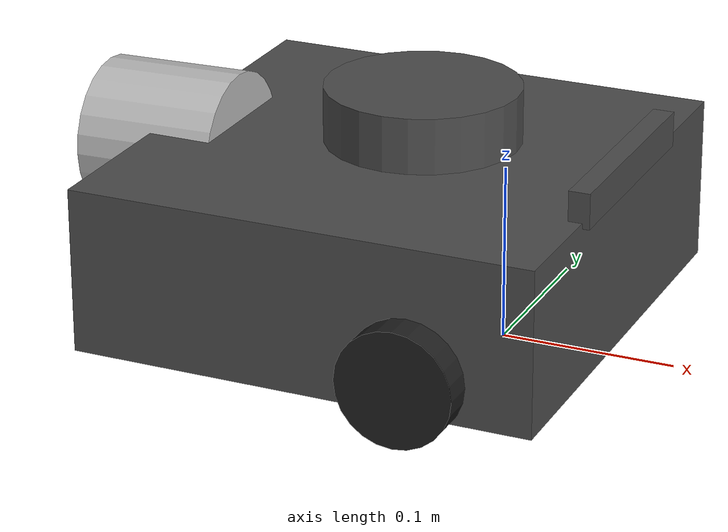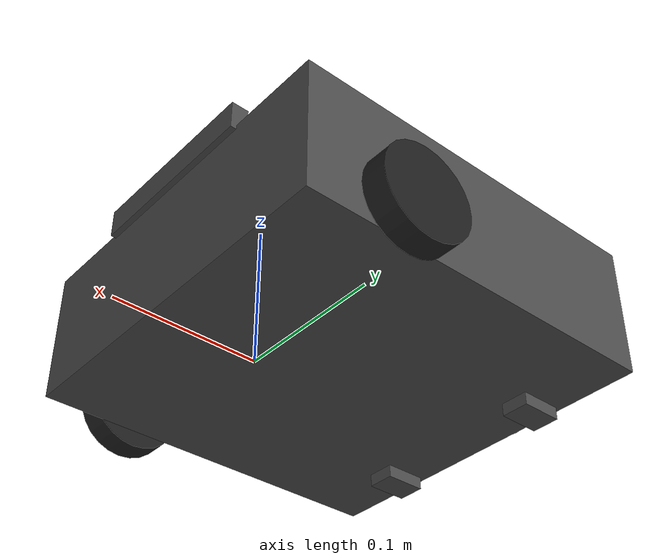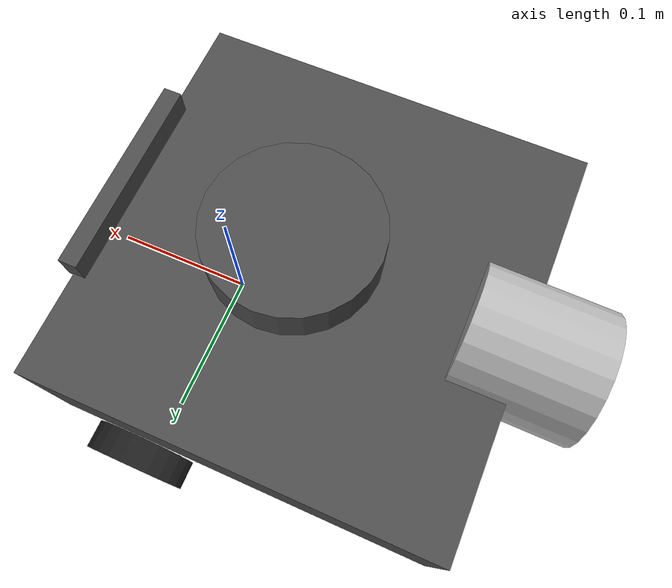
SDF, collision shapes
<?xml version='1.0'?>
<sdf version='1.6'>
  <model name='leader'>
    <link name='base_footprint'>
      <pose frame=''>0 0 -0 0 -0 0</pose>
      <inertial>
        <pose frame=''>-0.006056 0 0.019264 0 -0 0</pose>
        <mass>1.49691</mass>
        <inertia>
          <ixx>0.0133097</ixx>
          <ixy>-4.75766e-05</ixy>
          <ixz>0.000910646</ixz>
          <iyy>0.0139133</iyy>
          <iyz>-3.54223e-06</iyz>
          <izz>0.018379</izz>
        </inertia>
      </inertial>
      <velocity_decay/>
      <velocity_decay/>
      <sensor name='realsense_R200' type='depth'>
        <always_on>1</always_on>
        <visualize>0</visualize>
        <camera name='__default__'>
          <horizontal_fov>1.3439</horizontal_fov>
          <image>
            <width>1920</width>
            <height>1080</height>
            <format>R8G8B8</format>
          </image>
          <depth_camera>
            <output>depths</output>
          </depth_camera>
          <clip>
            <near>0.03</near>
            <far>100</far>
          </clip>
        </camera>
        <plugin name='camera_controller' filename='libgazebo_ros_openni_kinect.so'>
          <baseline>0.2</baseline>
          <alwaysOn>1</alwaysOn>
          <updateRate>30.0</updateRate>
          <cameraName>camera</cameraName>
          <frameName>camera_rgb_optical_frame</frameName>
          <imageTopicName>rgb/image_raw</imageTopicName>
          <depthImageTopicName>depth/image_raw</depthImageTopicName>
          <pointCloudTopicName>depth/points</pointCloudTopicName>
          <cameraInfoTopicName>rgb/camera_info</cameraInfoTopicName>
          <depthImageCameraInfoTopicName>depth/camera_info</depthImageCameraInfoTopicName>
          <pointCloudCutoff>0.4</pointCloudCutoff>
          <hackBaseline>0.07</hackBaseline>
          <distortionK1>0.0</distortionK1>
          <distortionK2>0.0</distortionK2>
          <distortionK3>0.0</distortionK3>
          <distortionT1>0.0</distortionT1>
          <distortionT2>0.0</distortionT2>
          <CxPrime>0.0</CxPrime>
          <Cx>0.0</Cx>
          <Cy>0.0</Cy>
          <focalLength>0</focalLength>
          <hackBaseline>0</hackBaseline>
          <robotNamespace>/</robotNamespace>
        </plugin>
        <pose frame=''>0.069 -0.047 0.117 0 -0 0</pose>
      </sensor>
      <velocity_decay/>
      <velocity_decay/>
      <velocity_decay/>
      <sensor name='imu' type='imu'>
        <always_on>1</always_on>
        <visualize>0</visualize>
        <pose frame=''>0 0 0.078 0 -0 0</pose>
        <imu/>
      </sensor>
      <gravity>1</gravity>
      <velocity_decay/>
      <sensor name='lds_lfcd_sensor' type='ray'>
        <visualize>0</visualize>
        <update_rate>5</update_rate>
        <ray>
          <scan>
            <horizontal>
              <samples>360</samples>
              <resolution>1</resolution>
              <min_angle>0</min_angle>
              <max_angle>6.28319</max_angle>
            </horizontal>
            <vertical>
              <samples>1</samples>
              <min_angle>0</min_angle>
              <max_angle>0</max_angle>
            </vertical>
          </scan>
          <range>
            <min>0.12</min>
            <max>3.5</max>
            <resolution>0.015</resolution>
          </range>
          <noise>
            <type>gaussian</type>
            <mean>0</mean>
            <stddev>0.01</stddev>
          </noise>
        </ray>
        <plugin name='gazebo_ros_lds_lfcd_controller' filename='libgazebo_ros_laser.so'>
          <topicName>scan</topicName>
          <frameName>base_scan</frameName>
          <robotNamespace>/</robotNamespace>
        </plugin>
        <pose frame=''>-0.064 0 0.132 0 -0 0</pose>
      </sensor>
      <self_collide>0</self_collide>
      <enable_wind>0</enable_wind>
      <kinematic>0</kinematic>
      <visual name='base_footprint_fixed_joint_lump__base_link_visual'>
        <pose frame=''>-0.064 0 0.01 0 -0 0</pose>
        <geometry>
          <mesh>
            <scale>0.001 0.001 0.001</scale>
            <uri>/home/cherise/catkin_ws/src/turtlebot3/turtlebot3_description/meshes/bases/waffle_base.stl</uri>
          </mesh>
        </geometry>
        <material>
          <script>
            <name>Gazebo/DarkGrey</name>
            <uri>file://media/materials/scripts/gazebo.material</uri>
          </script>
          <emissive>0 0 0 1</emissive>
        </material>
        <transparency>0</transparency>
        <cast_shadows>1</cast_shadows>
      </visual>
      <visual name='base_footprint_fixed_joint_lump__camera_link_visual_1'>
        <pose frame=''>0.064 -0.065 0.104 1.57 -0 1.57</pose>
        <geometry>
          <mesh>
            <scale>1 1 1</scale>
            <uri>/home/cherise/catkin_ws/src/turtlebot3/turtlebot3_description/meshes/sensors/r200.dae</uri>
          </mesh>
        </geometry>
        <transparency>0</transparency>
        <cast_shadows>1</cast_shadows>
        <material>
          <emissive>0 0 0 1</emissive>
        </material>
      </visual>
      <visual name='base_footprint_fixed_joint_lump__base_scan_visual_2'>
        <pose frame=''>-0.064 0 0.132 0 -0 0</pose>
        <geometry>
          <mesh>
            <scale>0.001 0.001 0.001</scale>
            <uri>/home/cherise/catkin_ws/src/turtlebot3/turtlebot3_description/meshes/sensors/lds.stl</uri>
          </mesh>
        </geometry>
        <material>
          <script>
            <name>Gazebo/FlatBlack</name>
            <uri>file://media/materials/scripts/gazebo.material</uri>
          </script>
          <emissive>0 0 0 1</emissive>
        </material>
        <transparency>0</transparency>
        <cast_shadows>1</cast_shadows>
      </visual>
      <collision name='base_footprint_fixed_joint_lump__base_link_collision'>
        <laser_retro>0</laser_retro>
        <max_contacts>10</max_contacts>
        <pose frame=''>-0.064 0 0.057 0 -0 0</pose>
        <geometry>
          <box>
            <size>0.266 0.266 0.094</size>
          </box>
        </geometry>
        <surface>
          <friction>
            <ode>
              <mu>1</mu>
              <mu2>1</mu2>
              <fdir1>0 0 0</fdir1>
              <slip1>0</slip1>
              <slip2>0</slip2>
            </ode>
            <torsional>
              <coefficient>1</coefficient>
              <patch_radius>0</patch_radius>
              <surface_radius>0</surface_radius>
              <use_patch_radius>1</use_patch_radius>
              <ode>
                <slip>0</slip>
              </ode>
            </torsional>
          </friction>
          <bounce>
            <restitution_coefficient>0</restitution_coefficient>
            <threshold>1e+06</threshold>
          </bounce>
          <contact>
            <collide_without_contact>0</collide_without_contact>
            <collide_without_contact_bitmask>1</collide_without_contact_bitmask>
            <collide_bitmask>1</collide_bitmask>
            <ode>
              <soft_cfm>0</soft_cfm>
              <soft_erp>0.2</soft_erp>
              <kp>1e+13</kp>
              <kd>1</kd>
              <max_vel>0.01</max_vel>
              <min_depth>0</min_depth>
            </ode>
            <bullet>
              <split_impulse>1</split_impulse>
              <split_impulse_penetration_threshold>-0.01</split_impulse_penetration_threshold>
              <soft_cfm>0</soft_cfm>
              <soft_erp>0.2</soft_erp>
              <kp>1e+13</kp>
              <kd>1</kd>
            </bullet>
          </contact>
        </surface>
      </collision>
      <collision name='base_footprint_fixed_joint_lump__caster_back_left_link_collision_2'>
        <laser_retro>0</laser_retro>
        <max_contacts>10</max_contacts>
        <pose frame=''>-0.177 0.064001 0.005 -1.57 0 0</pose>
        <geometry>
          <box>
            <size>0.03 0.009 0.02</size>
          </box>
        </geometry>
        <surface>
          <friction>
            <ode>
              <mu>0.1</mu>
              <mu2>0.1</mu2>
              <fdir1>0 0 0</fdir1>
              <slip1>0</slip1>
              <slip2>0</slip2>
            </ode>
            <torsional>
              <coefficient>1</coefficient>
              <patch_radius>0</patch_radius>
              <surface_radius>0</surface_radius>
              <use_patch_radius>1</use_patch_radius>
              <ode>
                <slip>0</slip>
              </ode>
            </torsional>
          </friction>
          <bounce>
            <restitution_coefficient>0</restitution_coefficient>
            <threshold>1e+06</threshold>
          </bounce>
          <contact>
            <collide_without_contact>0</collide_without_contact>
            <collide_without_contact_bitmask>1</collide_without_contact_bitmask>
            <collide_bitmask>1</collide_bitmask>
            <ode>
              <soft_cfm>0</soft_cfm>
              <soft_erp>0.2</soft_erp>
              <kp>1e+06</kp>
              <kd>100</kd>
              <max_vel>1</max_vel>
              <min_depth>0.001</min_depth>
            </ode>
            <bullet>
              <split_impulse>1</split_impulse>
              <split_impulse_penetration_threshold>-0.01</split_impulse_penetration_threshold>
              <soft_cfm>0</soft_cfm>
              <soft_erp>0.2</soft_erp>
              <kp>1e+06</kp>
              <kd>100</kd>
            </bullet>
          </contact>
        </surface>
      </collision>
      <collision name='base_footprint_fixed_joint_lump__camera_link_collision_1'>
        <laser_retro>0</laser_retro>
        <max_contacts>10</max_contacts>
        <pose frame=''>0.067 0 0.111 0 -0 0</pose>
        <geometry>
          <box>
            <size>0.012 0.132 0.02</size>
          </box>
        </geometry>
        <surface>
          <friction>
            <ode>
              <mu>1</mu>
              <mu2>1</mu2>
              <fdir1>0 0 0</fdir1>
              <slip1>0</slip1>
              <slip2>0</slip2>
            </ode>
            <torsional>
              <coefficient>1</coefficient>
              <patch_radius>0</patch_radius>
              <surface_radius>0</surface_radius>
              <use_patch_radius>1</use_patch_radius>
              <ode>
                <slip>0</slip>
              </ode>
            </torsional>
          </friction>
          <bounce>
            <restitution_coefficient>0</restitution_coefficient>
            <threshold>1e+06</threshold>
          </bounce>
          <contact>
            <collide_without_contact>0</collide_without_contact>
            <collide_without_contact_bitmask>1</collide_without_contact_bitmask>
            <collide_bitmask>1</collide_bitmask>
            <ode>
              <soft_cfm>0</soft_cfm>
              <soft_erp>0.2</soft_erp>
              <kp>1e+13</kp>
              <kd>1</kd>
              <max_vel>0.01</max_vel>
              <min_depth>0</min_depth>
            </ode>
            <bullet>
              <split_impulse>1</split_impulse>
              <split_impulse_penetration_threshold>-0.01</split_impulse_penetration_threshold>
              <soft_cfm>0</soft_cfm>
              <soft_erp>0.2</soft_erp>
              <kp>1e+13</kp>
              <kd>1</kd>
            </bullet>
          </contact>
        </surface>
      </collision>
      <collision name='base_footprint_fixed_joint_lump__caster_back_right_link_collision_3'>
        <laser_retro>0</laser_retro>
        <max_contacts>10</max_contacts>
        <pose frame=''>-0.177 -0.063999 0.005 -1.57 0 0</pose>
        <geometry>
          <box>
            <size>0.03 0.009 0.02</size>
          </box>
        </geometry>
        <surface>
          <friction>
            <ode>
              <mu>0.1</mu>
              <mu2>0.1</mu2>
              <fdir1>0 0 0</fdir1>
              <slip1>0</slip1>
              <slip2>0</slip2>
            </ode>
            <torsional>
              <coefficient>1</coefficient>
              <patch_radius>0</patch_radius>
              <surface_radius>0</surface_radius>
              <use_patch_radius>1</use_patch_radius>
              <ode>
                <slip>0</slip>
              </ode>
            </torsional>
          </friction>
          <bounce>
            <restitution_coefficient>0</restitution_coefficient>
            <threshold>1e+06</threshold>
          </bounce>
          <contact>
            <collide_without_contact>0</collide_without_contact>
            <collide_without_contact_bitmask>1</collide_without_contact_bitmask>
            <collide_bitmask>1</collide_bitmask>
            <ode>
              <soft_cfm>0</soft_cfm>
              <soft_erp>0.2</soft_erp>
              <kp>1e+06</kp>
              <kd>100</kd>
              <max_vel>1</max_vel>
              <min_depth>0.001</min_depth>
            </ode>
            <bullet>
              <split_impulse>1</split_impulse>
              <split_impulse_penetration_threshold>-0.01</split_impulse_penetration_threshold>
              <soft_cfm>0</soft_cfm>
              <soft_erp>0.2</soft_erp>
              <kp>1e+06</kp>
              <kd>100</kd>
            </bullet>
          </contact>
        </surface>
      </collision>
      <collision name='base_footprint_fixed_joint_lump__base_scan_collision_4'>
        <laser_retro>0</laser_retro>
        <max_contacts>10</max_contacts>
        <pose frame=''>-0.049 0 0.1255 0 -0 0</pose>
        <geometry>
          <cylinder>
            <radius>0.055</radius>
            <length>0.0315</length>
          </cylinder>
        </geometry>
        <surface>
          <friction>
            <ode>
              <mu>1</mu>
              <mu2>1</mu2>
              <fdir1>0 0 0</fdir1>
              <slip1>0</slip1>
              <slip2>0</slip2>
            </ode>
            <torsional>
              <coefficient>1</coefficient>
              <patch_radius>0</patch_radius>
              <surface_radius>0</surface_radius>
              <use_patch_radius>1</use_patch_radius>
              <ode>
                <slip>0</slip>
              </ode>
            </torsional>
          </friction>
          <bounce>
            <restitution_coefficient>0</restitution_coefficient>
            <threshold>1e+06</threshold>
          </bounce>
          <contact>
            <collide_without_contact>0</collide_without_contact>
            <collide_without_contact_bitmask>1</collide_without_contact_bitmask>
            <collide_bitmask>1</collide_bitmask>
            <ode>
              <soft_cfm>0</soft_cfm>
              <soft_erp>0.2</soft_erp>
              <kp>1e+13</kp>
              <kd>1</kd>
              <max_vel>0.01</max_vel>
              <min_depth>0</min_depth>
            </ode>
            <bullet>
              <split_impulse>1</split_impulse>
              <split_impulse_penetration_threshold>-0.01</split_impulse_penetration_threshold>
              <soft_cfm>0</soft_cfm>
              <soft_erp>0.2</soft_erp>
              <kp>1e+13</kp>
              <kd>1</kd>
            </bullet>
          </contact>
        </surface>
      </collision>
    </link>
    <link name='link_0'>
      <inertial>
        <mass>0.000623322</mass>
        <inertia>
          <ixx>6.45142e-07</ixx>
          <ixy>0</ixy>
          <ixz>0</ixz>
          <iyy>6.45142e-07</iyy>
          <iyz>0</iyz>
          <izz>5.92721e-07</izz>
        </inertia>
        <pose frame=''>0 0 0 0 -0 0</pose>
      </inertial>
      <pose frame=''>-0.200831 -0.001344 0.086575 3.14137 -1.55227 -3.14144</pose>
      <self_collide>0</self_collide>
      <enable_wind>0</enable_wind>
      <kinematic>0</kinematic>
      <visual name='visual'>
        <pose frame=''>0 0 0 0 -0 0</pose>
        <geometry>
          <mesh>
            <uri>model://turtlebot3_arleader/meshes/cubemesh.dae</uri>
          </mesh>
        </geometry>
        <material>
          <lighting>1</lighting>
          <script>
            <uri>model://turtlebot3_arleader/materials/scripts</uri>
            <uri>model://turtlebot3_arleader/materials/textures</uri>
            <name>cubemark/Diffuse</name>
          </script>
        </material>
        <transparency>0</transparency>
        <cast_shadows>1</cast_shadows>
      </visual>
      <collision name='collision'>
        <laser_retro>0</laser_retro>
        <max_contacts>10</max_contacts>
        <pose frame=''>0 0 0 0 -0 0</pose>
        <geometry>
          <cylinder>
            <radius>0.04361</radius>
            <length>0.081943</length>
          </cylinder>
        </geometry>
        <surface>
          <friction>
            <ode>
              <mu>1</mu>
              <mu2>1</mu2>
              <fdir1>0 0 0</fdir1>
              <slip1>0</slip1>
              <slip2>0</slip2>
            </ode>
            <torsional>
              <coefficient>1</coefficient>
              <patch_radius>0</patch_radius>
              <surface_radius>0</surface_radius>
              <use_patch_radius>1</use_patch_radius>
              <ode>
                <slip>0</slip>
              </ode>
            </torsional>
          </friction>
          <bounce>
            <restitution_coefficient>0</restitution_coefficient>
            <threshold>1e+06</threshold>
          </bounce>
          <contact>
            <collide_without_contact>0</collide_without_contact>
            <collide_without_contact_bitmask>1</collide_without_contact_bitmask>
            <collide_bitmask>1</collide_bitmask>
            <ode>
              <soft_cfm>0</soft_cfm>
              <soft_erp>0.2</soft_erp>
              <kp>1e+13</kp>
              <kd>1</kd>
              <max_vel>0.01</max_vel>
              <min_depth>0</min_depth>
            </ode>
            <bullet>
              <split_impulse>1</split_impulse>
              <split_impulse_penetration_threshold>-0.01</split_impulse_penetration_threshold>
              <soft_cfm>0</soft_cfm>
              <soft_erp>0.2</soft_erp>
              <kp>1e+13</kp>
              <kd>1</kd>
            </bullet>
          </contact>
        </surface>
      </collision>
    </link>
    <link name='wheel_left_link'>
      <pose frame=''>0 0.144 0.033 -1.57 -0 0</pose>
      <inertial>
        <pose frame=''>0 0 0 0 -0 0</pose>
        <mass>0.0284989</mass>
        <inertia>
          <ixx>1.11756e-05</ixx>
          <ixy>-4.23698e-11</ixy>
          <ixz>-5.93817e-09</ixz>
          <iyy>1.11924e-05</iyy>
          <iyz>-1.44001e-11</iyz>
          <izz>2.07126e-05</izz>
        </inertia>
      </inertial>
      <gravity>1</gravity>
      <velocity_decay/>
      <self_collide>0</self_collide>
      <enable_wind>0</enable_wind>
      <kinematic>0</kinematic>
      <visual name='wheel_left_link_visual'>
        <pose frame=''>0 0 0 1.57 -0 0</pose>
        <geometry>
          <mesh>
            <scale>0.001 0.001 0.001</scale>
            <uri>/home/cherise/catkin_ws/src/turtlebot3/turtlebot3_description/meshes/wheels/left_tire.stl</uri>
          </mesh>
        </geometry>
        <material>
          <script>
            <name>Gazebo/FlatBlack</name>
            <uri>file://media/materials/scripts/gazebo.material</uri>
          </script>
        </material>
        <transparency>0</transparency>
        <cast_shadows>1</cast_shadows>
      </visual>
      <collision name='wheel_left_link_collision'>
        <laser_retro>0</laser_retro>
        <max_contacts>10</max_contacts>
        <pose frame=''>0 0 0 0 -0 0</pose>
        <geometry>
          <cylinder>
            <radius>0.033</radius>
            <length>0.018</length>
          </cylinder>
        </geometry>
        <surface>
          <friction>
            <ode>
              <mu>0.1</mu>
              <mu2>0.1</mu2>
              <fdir1>1 0 0</fdir1>
              <slip1>0</slip1>
              <slip2>0</slip2>
            </ode>
            <torsional>
              <coefficient>1</coefficient>
              <patch_radius>0</patch_radius>
              <surface_radius>0</surface_radius>
              <use_patch_radius>1</use_patch_radius>
              <ode>
                <slip>0</slip>
              </ode>
            </torsional>
          </friction>
          <bounce>
            <restitution_coefficient>0</restitution_coefficient>
            <threshold>1e+06</threshold>
          </bounce>
          <contact>
            <collide_without_contact>0</collide_without_contact>
            <collide_without_contact_bitmask>1</collide_without_contact_bitmask>
            <collide_bitmask>1</collide_bitmask>
            <ode>
              <soft_cfm>0</soft_cfm>
              <soft_erp>0.2</soft_erp>
              <kp>500000</kp>
              <kd>10</kd>
              <max_vel>0.1</max_vel>
              <min_depth>0.001</min_depth>
            </ode>
            <bullet>
              <split_impulse>1</split_impulse>
              <split_impulse_penetration_threshold>-0.01</split_impulse_penetration_threshold>
              <soft_cfm>0</soft_cfm>
              <soft_erp>0.2</soft_erp>
              <kp>500000</kp>
              <kd>10</kd>
            </bullet>
          </contact>
        </surface>
      </collision>
    </link>
    <link name='wheel_right_link'>
      <pose frame=''>0 -0.144 0.033 -1.57 -0 0</pose>
      <inertial>
        <pose frame=''>0 0 0 0 -0 0</pose>
        <mass>0.0284989</mass>
        <inertia>
          <ixx>1.11756e-05</ixx>
          <ixy>-4.23698e-11</ixy>
          <ixz>-5.93817e-09</ixz>
          <iyy>1.11924e-05</iyy>
          <iyz>-1.44001e-11</iyz>
          <izz>2.07126e-05</izz>
        </inertia>
      </inertial>
      <gravity>1</gravity>
      <velocity_decay/>
      <self_collide>0</self_collide>
      <enable_wind>0</enable_wind>
      <kinematic>0</kinematic>
      <visual name='wheel_right_link_visual'>
        <pose frame=''>0 0 0 1.57 -0 0</pose>
        <geometry>
          <mesh>
            <scale>0.001 0.001 0.001</scale>
            <uri>/home/cherise/catkin_ws/src/turtlebot3/turtlebot3_description/meshes/wheels/right_tire.stl</uri>
          </mesh>
        </geometry>
        <material>
          <script>
            <name>Gazebo/FlatBlack</name>
            <uri>file://media/materials/scripts/gazebo.material</uri>
          </script>
        </material>
        <transparency>0</transparency>
        <cast_shadows>1</cast_shadows>
      </visual>
      <collision name='wheel_right_link_collision'>
        <laser_retro>0</laser_retro>
        <max_contacts>10</max_contacts>
        <pose frame=''>0 0 0 0 -0 0</pose>
        <geometry>
          <cylinder>
            <radius>0.033</radius>
            <length>0.018</length>
          </cylinder>
        </geometry>
        <surface>
          <friction>
            <ode>
              <mu>0.1</mu>
              <mu2>0.1</mu2>
              <fdir1>1 0 0</fdir1>
              <slip1>0</slip1>
              <slip2>0</slip2>
            </ode>
            <torsional>
              <coefficient>1</coefficient>
              <patch_radius>0</patch_radius>
              <surface_radius>0</surface_radius>
              <use_patch_radius>1</use_patch_radius>
              <ode>
                <slip>0</slip>
              </ode>
            </torsional>
          </friction>
          <bounce>
            <restitution_coefficient>0</restitution_coefficient>
            <threshold>1e+06</threshold>
          </bounce>
          <contact>
            <collide_without_contact>0</collide_without_contact>
            <collide_without_contact_bitmask>1</collide_without_contact_bitmask>
            <collide_bitmask>1</collide_bitmask>
            <ode>
              <soft_cfm>0</soft_cfm>
              <soft_erp>0.2</soft_erp>
              <kp>500000</kp>
              <kd>10</kd>
              <max_vel>0.1</max_vel>
              <min_depth>0.001</min_depth>
            </ode>
            <bullet>
              <split_impulse>1</split_impulse>
              <split_impulse_penetration_threshold>-0.01</split_impulse_penetration_threshold>
              <soft_cfm>0</soft_cfm>
              <soft_erp>0.2</soft_erp>
              <kp>500000</kp>
              <kd>10</kd>
            </bullet>
          </contact>
        </surface>
      </collision>
    </link>
    <joint name='base_footprint_JOINT_0' type='fixed'>
      <parent>base_footprint</parent>
      <child>link_0</child>
      <pose frame=''>0 0 0 0 -0 0</pose>
      <physics>
        <ode>
          <limit>
            <cfm>0</cfm>
            <erp>0.2</erp>
          </limit>
          <suspension>
            <cfm>0</cfm>
            <erp>0.2</erp>
          </suspension>
        </ode>
      </physics>
    </joint>
    <joint name='wheel_left_joint' type='revolute'>
      <parent>base_footprint</parent>
      <child>wheel_left_link</child>
      <pose frame=''>0 0 0 0 -0 0</pose>
      <axis>
        <xyz>0 1 0.000796</xyz>
        <use_parent_model_frame>1</use_parent_model_frame>
        <limit>
          <lower>-1e+16</lower>
          <upper>1e+16</upper>
          <effort>-1</effort>
          <velocity>-1</velocity>
        </limit>
        <dynamics>
          <spring_reference>0</spring_reference>
          <spring_stiffness>0</spring_stiffness>
          <damping>0</damping>
          <friction>0</friction>
        </dynamics>
      </axis>
      <physics>
        <ode>
          <limit>
            <cfm>0</cfm>
            <erp>0.2</erp>
          </limit>
          <suspension>
            <cfm>0</cfm>
            <erp>0.2</erp>
          </suspension>
        </ode>
      </physics>
    </joint>
    <joint name='wheel_right_joint' type='revolute'>
      <parent>base_footprint</parent>
      <child>wheel_right_link</child>
      <pose frame=''>0 0 0 0 -0 0</pose>
      <axis>
        <xyz>0 1 0.000796</xyz>
        <use_parent_model_frame>1</use_parent_model_frame>
        <limit>
          <lower>-1e+16</lower>
          <upper>1e+16</upper>
          <effort>-1</effort>
          <velocity>-1</velocity>
        </limit>
        <dynamics>
          <spring_reference>0</spring_reference>
          <spring_stiffness>0</spring_stiffness>
          <damping>0</damping>
          <friction>0</friction>
        </dynamics>
      </axis>
      <physics>
        <ode>
          <limit>
            <cfm>0</cfm>
            <erp>0.2</erp>
          </limit>
          <suspension>
            <cfm>0</cfm>
            <erp>0.2</erp>
          </suspension>
        </ode>
      </physics>
    </joint>
    <static>0</static>
    <allow_auto_disable>1</allow_auto_disable>
    <plugin name='imu_plugin' filename='libgazebo_ros_imu.so'>
      <alwaysOn>1</alwaysOn>
      <topicName>imu</topicName>
      <serviceName>imu_service</serviceName>
      <gaussianNoise>0.0</gaussianNoise>
      <updateRate>200</updateRate>
      <imu>
        <noise>
          <type>gaussian</type>
          <rate>
            <mean>0.0</mean>
            <stddev>2e-4</stddev>
            <bias_mean>0.0000075</bias_mean>
            <bias_stddev>0.0000008</bias_stddev>
          </rate>
          <accel>
            <mean>0.0</mean>
            <stddev>1.7e-2</stddev>
            <bias_mean>0.1</bias_mean>
            <bias_stddev>0.001</bias_stddev>
          </accel>
        </noise>
      </imu>
      <robotNamespace>/</robotNamespace>
      <bodyName>base_footprint</bodyName>
      <frameName>base_footprint</frameName>
      <xyzOffset>0 0 -0.156</xyzOffset>
      <rpyOffset>0 -0 0</rpyOffset>
    </plugin>
    <plugin name='turtlebot3_waffle_controller' filename='libgazebo_ros_diff_drive.so'>
      <commandTopic>cmd_vel</commandTopic>
      <odometryTopic>odom</odometryTopic>
      <odometryFrame>odom</odometryFrame>
      <odometrySource>world</odometrySource>
      <publishOdomTF>1</publishOdomTF>
      <robotBaseFrame>base_footprint</robotBaseFrame>
      <publishWheelTF>0</publishWheelTF>
      <publishTf>1</publishTf>
      <publishWheelJointState>1</publishWheelJointState>
      <legacyMode>0</legacyMode>
      <updateRate>30</updateRate>
      <leftJoint>wheel_left_joint</leftJoint>
      <rightJoint>wheel_right_joint</rightJoint>
      <wheelSeparation>0.287</wheelSeparation>
      <wheelDiameter>0.066</wheelDiameter>
      <wheelAcceleration>1</wheelAcceleration>
      <wheelTorque>10</wheelTorque>
      <rosDebugLevel>na</rosDebugLevel>
      <robotNamespace>/</robotNamespace>
    </plugin>
  </model>
</sdf>
